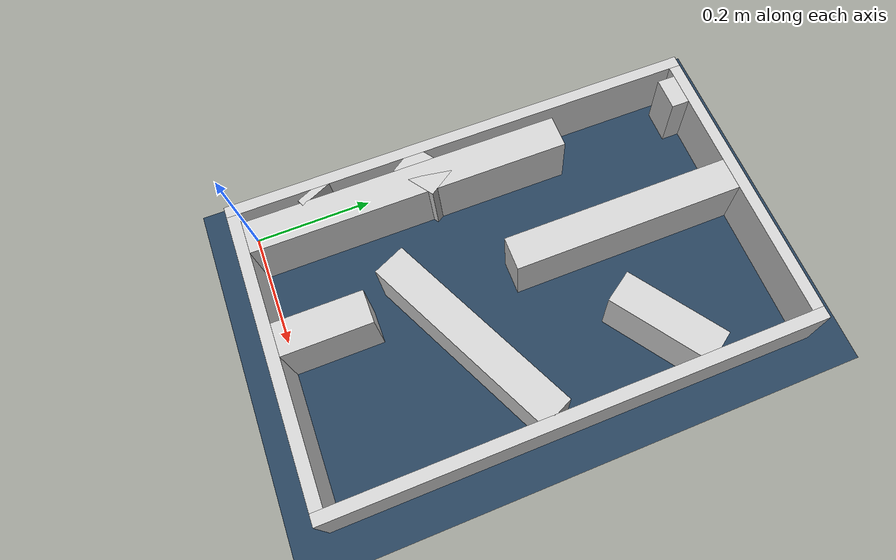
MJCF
<?xml version="1.0" ?>
<mujoco model="generated_real_template">
  <compiler angle="degree"/>
  <option timestep="0.002" integrator="implicitfast" iterations="100" cone="elliptic"/>
  <default>
    <geom density="1"/>
  </default>
  <asset>
    <texture builtin="gradient" height="3072" rgb1="0.3 0.5 0.7" rgb2="0 0 0" type="skybox" width="512"/>
    <texture builtin="checker" height="300" mark="edge" markrgb="0.8 0.8 0.8" name="groundplane" rgb1="0.2 0.3 0.4" rgb2="0.1 0.2 0.3" type="2d" width="300"/>
    <material name="groundplane" reflectance="0.2" texrepeat="5 5" texture="groundplane" texuniform="true"/>
  </asset>
  <worldbody>
    <light dir="0 0 -1" directional="true" pos="0 0 1.5"/>
    <geom name="floor" type="plane" condim="4" friction="0.5 0.005 0.001" material="groundplane" size="0 0 0.05"/>
    <body name="walls">
      <geom name="wall_boundary_left" type="box" condim="4" friction="1.0 0.005 0.0001" rgba="0.8 0.8 0.8 1" pos="-0.010000 0.387500 0.050000" euler="0 0 0.000000" size="0.010000 0.407500 0.050000"/>
      <geom name="wall_boundary_right" type="box" condim="4" friction="1.0 0.005 0.0001" rgba="0.8 0.8 0.8 1" pos="0.500000 0.387500 0.050000" euler="0 0 0.000000" size="0.010000 0.407500 0.050000"/>
      <geom name="wall_boundary_bottom" type="box" condim="4" friction="1.0 0.005 0.0001" rgba="0.8 0.8 0.8 1" pos="0.245000 -0.010000 0.050000" euler="0 0 0.000000" size="0.245000 0.010000 0.050000"/>
      <geom name="wall_boundary_top" type="box" condim="4" friction="1.0 0.005 0.0001" rgba="0.8 0.8 0.8 1" pos="0.245000 0.785000 0.050000" euler="0 0 0.000000" size="0.245000 0.010000 0.050000"/>
      <geom name="wall_inner_1_1" type="box" condim="4" friction="1.0 0.005 0.0001" rgba="0.8 0.8 0.8 1" pos="0.328446 0.275747 0.050000" euler="0 0 -154.764494" size="0.178599 0.028500 0.050000"/>
      <geom name="wall_inner_1_2" type="box" condim="4" friction="1.0 0.005 0.0001" rgba="0.8 0.8 0.8 1" pos="0.005884 0.123717 0.050000" euler="0 0 -154.764494" size="0.006505 0.028500 0.050000"/>
      <geom name="wall_inner_2_1" type="box" condim="4" friction="1.0 0.005 0.0001" rgba="0.8 0.8 0.8 1" pos="0.033106 0.303683 0.050000" euler="0 0 34.530650" size="0.040186 0.028500 0.050000"/>
      <geom name="wall_inner_2_2" type="box" condim="4" friction="1.0 0.005 0.0001" rgba="0.8 0.8 0.8 1" pos="0.415912 0.567080 0.050000" euler="0 0 34.530650" size="0.089932 0.028500 0.050000"/>
      <geom name="wall_inner_3_1" type="box" condim="4" friction="1.0 0.005 0.0001" rgba="0.8 0.8 0.8 1" pos="0.046288 0.270941 0.050000" euler="0 0 90.000000" size="0.270941 0.028500 0.050000"/>
      <geom name="wall_inner_3_2" type="box" condim="4" friction="1.0 0.005 0.0001" rgba="0.8 0.8 0.8 1" pos="0.046288 0.759565 0.050000" euler="0 0 90.000000" size="0.015435 0.028500 0.050000"/>
      <geom name="wall_inner_4_1" type="box" condim="4" friction="1.0 0.005 0.0001" rgba="0.8 0.8 0.8 1" pos="0.229361 0.073666 0.050000" euler="0 0 90.000000" size="0.073666 0.028500 0.050000"/>
      <geom name="wall_inner_4_2" type="box" condim="4" friction="1.0 0.005 0.0001" rgba="0.8 0.8 0.8 1" pos="0.229361 0.578583 0.050000" euler="0 0 90.000000" size="0.196417 0.028500 0.050000"/>
    </body>
  </worldbody>
</mujoco>
